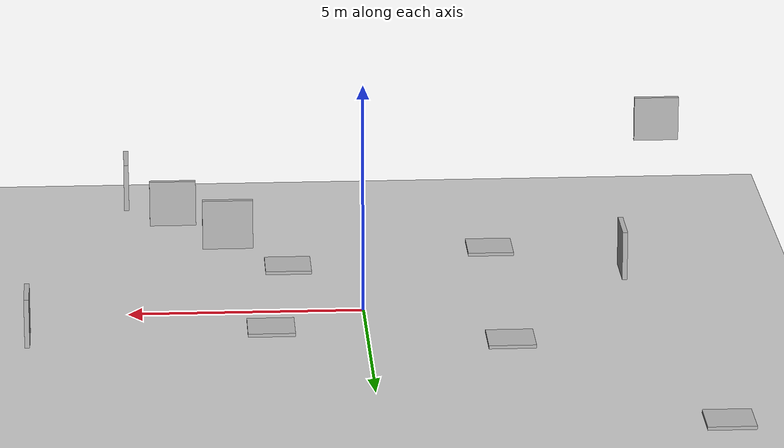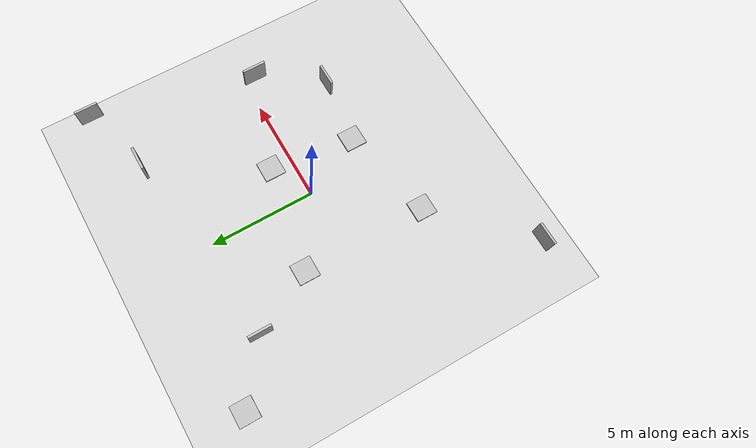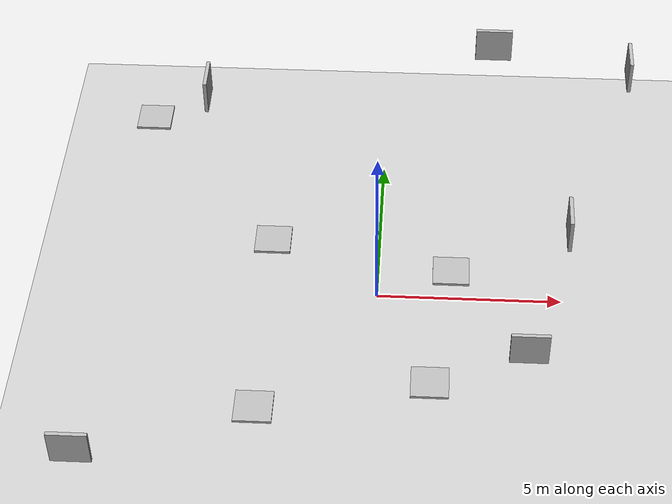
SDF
<sdf version="1.4">
 <world name="default">
  <include><uri>model://ground_plane</uri></include>
  <include><uri>model://sun</uri></include>
  <model name="tag_0">
   <pose>2.000000 1.000000 0.000000 0.000000 0.000000 0.000000</pose>
   <link name="link">
    <inertial>
     <mass>1.000000</mass>
     <inertia>
      <ixx>1.000000</ixx>
      <ixy>0.000000</ixy>
      <ixz>0.000000</ixz>
      <iyy>1.000000</iyy>
      <iyz>0.000000</iyz>
      <izz>1.000000</izz>
     </inertia>
    </inertial>
    <collision name="collision">
     <geometry><box><size>1.000000 1.000000 0.100000</size></box></geometry>
    </collision>
    <visual name="visual">
     <geometry><box><size>1.000000 1.000000 0.100000</size></box></geometry>
     <material>
      <script>
       <uri>model://AprilTags/materials/scripts</uri>
       <uri>model://AprilTags/materials/textures</uri>
       <name>Tag36_11_00000</name>
      </script>
     </material>
    </visual>
    <velocity_decay><linear>0.000000</linear><angular>0.000000</angular></velocity_decay>
    <gravity>0</gravity>
   </link>
   <static>0</static>
  </model>
  <model name="tag_1">
   <pose>-3.000000 2.000000 0.000000 0.000000 0.000000 0.000000</pose>
   <link name="link">
    <inertial>
     <mass>1.000000</mass>
     <inertia>
      <ixx>1.000000</ixx>
      <ixy>0.000000</ixy>
      <ixz>0.000000</ixz>
      <iyy>1.000000</iyy>
      <iyz>0.000000</iyz>
      <izz>1.000000</izz>
     </inertia>
    </inertial>
    <collision name="collision">
     <geometry><box><size>1.000000 1.000000 0.100000</size></box></geometry>
    </collision>
    <visual name="visual">
     <geometry><box><size>1.000000 1.000000 0.100000</size></box></geometry>
     <material>
      <script>
       <uri>model://AprilTags/materials/scripts</uri>
       <uri>model://AprilTags/materials/textures</uri>
       <name>Tag36_11_00001</name>
      </script>
     </material>
    </visual>
    <velocity_decay><linear>0.000000</linear><angular>0.000000</angular></velocity_decay>
    <gravity>0</gravity>
   </link>
   <static>0</static>
  </model>
  <model name="tag_2">
   <pose>1.500000 -3.00000 0.000000 0.000000 0.000000 0.000000</pose>
   <link name="link">
    <inertial>
     <mass>1.000000</mass>
     <inertia>
      <ixx>1.000000</ixx>
      <ixy>0.000000</ixy>
      <ixz>0.000000</ixz>
      <iyy>1.000000</iyy>
      <iyz>0.000000</iyz>
      <izz>1.000000</izz>
     </inertia>
    </inertial>
    <collision name="collision">
     <geometry><box><size>1.000000 1.000000 0.100000</size></box></geometry>
    </collision>
    <visual name="visual">
     <geometry><box><size>1.000000 1.000000 0.100000</size></box></geometry>
     <material>
      <script>
       <uri>model://AprilTags/materials/scripts</uri>
       <uri>model://AprilTags/materials/textures</uri>
       <name>Tag36_11_00002</name>
      </script>
     </material>
    </visual>
    <velocity_decay><linear>0.000000</linear><angular>0.000000</angular></velocity_decay>
    <gravity>0</gravity>
   </link>
   <static>0</static>
  </model>
  <model name="tag_3">
   <pose>-7.000000 7.000000 0.000000 0.000000 0.000000 0.000000</pose>
   <link name="link">
    <inertial>
     <mass>1.000000</mass>
     <inertia>
      <ixx>1.000000</ixx>
      <ixy>0.000000</ixy>
      <ixz>0.000000</ixz>
      <iyy>1.000000</iyy>
      <iyz>0.000000</iyz>
      <izz>1.000000</izz>
     </inertia>
    </inertial>
    <collision name="collision">
     <geometry><box><size>1.000000 1.000000 0.100000</size></box></geometry>
    </collision>
    <visual name="visual">
     <geometry><box><size>1.000000 1.000000 0.100000</size></box></geometry>
     <material>
      <script>
       <uri>model://AprilTags/materials/scripts</uri>
       <uri>model://AprilTags/materials/textures</uri>
       <name>Tag36_11_00003</name>
      </script>
     </material>
    </visual>
    <velocity_decay><linear>0.000000</linear><angular>0.000000</angular></velocity_decay>
    <gravity>0</gravity>
   </link>
   <static>0</static>
  </model>
  <model name="tag_4">
   <pose>-5.000000 5.000000 3.000000 1.570793 0.000000 1.570793</pose>
   <link name="link">
    <inertial>
     <mass>1.000000</mass>
     <inertia>
      <ixx>1.000000</ixx>
      <ixy>0.000000</ixy>
      <ixz>0.000000</ixz>
      <iyy>1.000000</iyy>
      <iyz>0.000000</iyz>
      <izz>1.000000</izz>
     </inertia>
    </inertial>
    <collision name="collision">
     <geometry><box><size>1.000000 1.000000 0.100000</size></box></geometry>
    </collision>
    <visual name="visual">
     <geometry><box><size>1.000000 1.000000 0.100000</size></box></geometry>
     <material>
      <script>
       <uri>model://AprilTags/materials/scripts</uri>
       <uri>model://AprilTags/materials/textures</uri>
       <name>Tag36_11_00004</name>
      </script>
     </material>
    </visual>
    <velocity_decay><linear>0.000000</linear><angular>0.000000</angular></velocity_decay>
    <gravity>0</gravity>
   </link>
   <static>0</static>
  </model>
  <model name="tag_5">
   <pose>3.000000 6.000000 4.000000 1.570793 0.000000 0.000000</pose>
   <link name="link">
    <inertial>
     <mass>1.000000</mass>
     <inertia>
      <ixx>1.000000</ixx>
      <ixy>0.000000</ixy>
      <ixz>0.000000</ixz>
      <iyy>1.000000</iyy>
      <iyz>0.000000</iyz>
      <izz>1.000000</izz>
     </inertia>
    </inertial>
    <collision name="collision">
     <geometry><box><size>1.000000 1.000000 0.100000</size></box></geometry>
    </collision>
    <visual name="visual">
     <geometry><box><size>1.000000 1.000000 0.100000</size></box></geometry>
     <material>
      <script>
       <uri>model://AprilTags/materials/scripts</uri>
       <uri>model://AprilTags/materials/textures</uri>
       <name>Tag36_11_00005</name>
      </script>
     </material>
    </visual>
    <velocity_decay><linear>0.000000</linear><angular>0.000000</angular></velocity_decay>
    <gravity>0</gravity>
   </link>
   <static>0</static>
  </model>
  <model name="tag_6">
   <pose>4.000000 -3.000000 1.500000 1.570793 0.000000 0.000000</pose>
   <link name="link">
    <inertial>
     <mass>1.000000</mass>
     <inertia>
      <ixx>1.000000</ixx>
      <ixy>0.000000</ixy>
      <ixz>0.000000</ixz>
      <iyy>1.000000</iyy>
      <iyz>0.000000</iyz>
      <izz>1.000000</izz>
     </inertia>
    </inertial>
    <collision name="collision">
     <geometry><box><size>1.000000 1.000000 0.100000</size></box></geometry>
    </collision>
    <visual name="visual">
     <geometry><box><size>1.000000 1.000000 0.100000</size></box></geometry>
     <material>
      <script>
       <uri>model://AprilTags/materials/scripts</uri>
       <uri>model://AprilTags/materials/textures</uri>
       <name>Tag36_11_00006</name>
      </script>
     </material>
    </visual>
    <velocity_decay><linear>0.000000</linear><angular>0.000000</angular></velocity_decay>
    <gravity>0</gravity>
   </link>
   <static>0</static>
  </model>
  <model name="tag_7">
   <pose>7.000000 7.000000 2.500000 0.000000 1.570793 0.000000</pose>
   <link name="link">
    <inertial>
     <mass>1.000000</mass>
     <inertia>
      <ixx>1.000000</ixx>
      <ixy>0.000000</ixy>
      <ixz>0.000000</ixz>
      <iyy>1.000000</iyy>
      <iyz>0.000000</iyz>
      <izz>1.000000</izz>
     </inertia>
    </inertial>
    <collision name="collision">
     <geometry><box><size>1.000000 1.000000 0.100000</size></box></geometry>
    </collision>
    <visual name="visual">
     <geometry><box><size>1.000000 1.000000 0.100000</size></box></geometry>
     <material>
      <script>
       <uri>model://AprilTags/materials/scripts</uri>
       <uri>model://AprilTags/materials/textures</uri>
       <name>Tag36_11_00007</name>
      </script>
     </material>
    </visual>
    <velocity_decay><linear>0.000000</linear><angular>0.000000</angular></velocity_decay>
    <gravity>0</gravity>
   </link>
   <static>0</static>
  </model>
  <model name="tag_8">
   <pose>-7.000000 -7.000000 2.000000 1.570793 0.000000 0.000000</pose>
   <link name="link">
    <inertial>
     <mass>1.000000</mass>
     <inertia>
      <ixx>1.000000</ixx>
      <ixy>0.000000</ixy>
      <ixz>0.000000</ixz>
      <iyy>1.000000</iyy>
      <iyz>0.000000</iyz>
      <izz>1.000000</izz>
     </inertia>
    </inertial>
    <collision name="collision">
     <geometry><box><size>1.000000 1.000000 0.100000</size></box></geometry>
    </collision>
    <visual name="visual">
     <geometry><box><size>1.000000 1.000000 0.100000</size></box></geometry>
     <material>
      <script>
       <uri>model://AprilTags/materials/scripts</uri>
       <uri>model://AprilTags/materials/textures</uri>
       <name>Tag36_11_00008</name>
      </script>
     </material>
    </visual>
    <velocity_decay><linear>0.000000</linear><angular>0.000000</angular></velocity_decay>
    <gravity>0</gravity>
   </link>
   <static>0</static>
  </model>
  <model name="tag_9">
   <pose>-3.000000 -4.000000 0.000000 0.000000 0.000000 0.000000</pose>
   <link name="link">
    <inertial>
     <mass>1.000000</mass>
     <inertia>
      <ixx>1.000000</ixx>
      <ixy>0.000000</ixy>
      <ixz>0.000000</ixz>
      <iyy>1.000000</iyy>
      <iyz>0.000000</iyz>
      <izz>1.000000</izz>
     </inertia>
    </inertial>
    <collision name="collision">
     <geometry><box><size>1.000000 1.000000 0.100000</size></box></geometry>
    </collision>
    <visual name="visual">
     <geometry><box><size>1.000000 1.000000 0.100000</size></box></geometry>
     <material>
      <script>
       <uri>model://AprilTags/materials/scripts</uri>
       <uri>model://AprilTags/materials/textures</uri>
       <name>Tag36_11_00009</name>
      </script>
     </material>
    </visual>
    <velocity_decay><linear>0.000000</linear><angular>0.000000</angular></velocity_decay>
    <gravity>0</gravity>
   </link>
   <static>0</static>
  </model>
  <model name="tag_10">
   <pose>5.000000 0.000000 3.000000 0.000000 1.570793 0.000000</pose>
   <link name="link">
    <inertial>
     <mass>1.000000</mass>
     <inertia>
      <ixx>1.000000</ixx>
      <ixy>0.000000</ixy>
      <ixz>0.000000</ixz>
      <iyy>1.000000</iyy>
      <iyz>0.000000</iyz>
      <izz>1.000000</izz>
     </inertia>
    </inertial>
    <collision name="collision">
     <geometry><box><size>1.000000 1.000000 0.100000</size></box></geometry>
    </collision>
    <visual name="visual">
     <geometry><box><size>1.000000 1.000000 0.100000</size></box></geometry>
     <material>
      <script>
       <uri>model://AprilTags/materials/scripts</uri>
       <uri>model://AprilTags/materials/textures</uri>
       <name>Tag36_11_00010</name>
      </script>
     </material>
    </visual>
    <velocity_decay><linear>0.000000</linear><angular>0.000000</angular></velocity_decay>
    <gravity>0</gravity>
   </link>
   <static>0</static>
  </model>
 </world>
</sdf>
